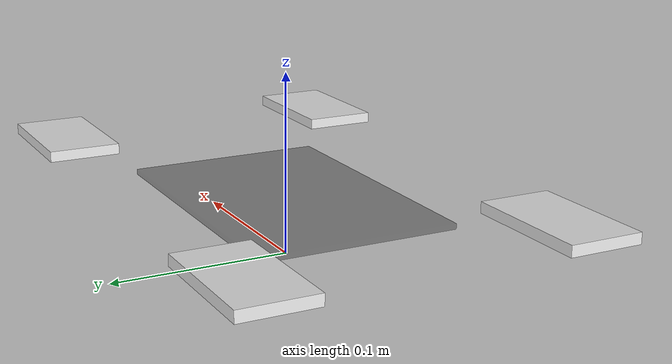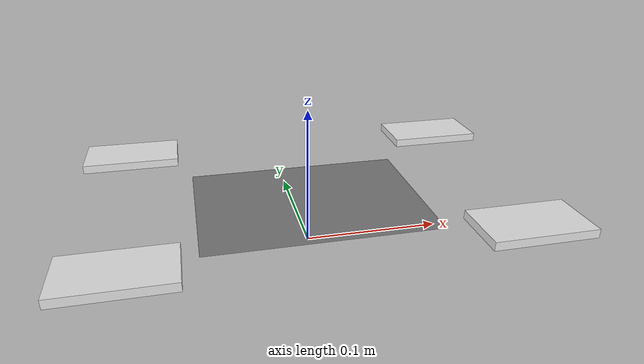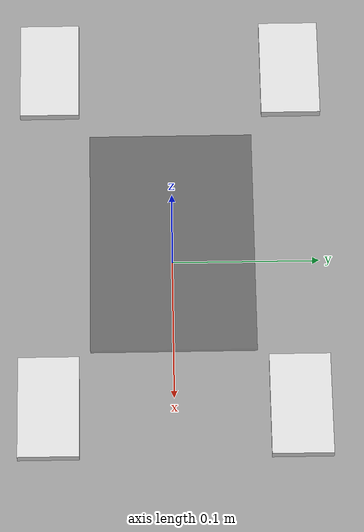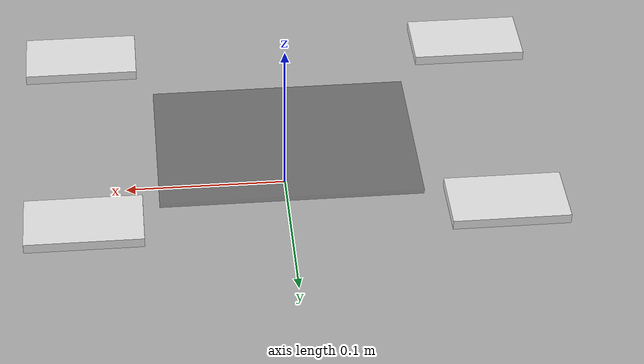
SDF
<?xml version="1.0"?>
<sdf version="1.9">
  <model name="room315_shuttle_identity_frame">
    <static>false</static>
    <link name="identity_frame_link">
      <kinematic>true</kinematic>
      <gravity>false</gravity>
      <!-- Center keep-out plate shows where payloads may sit; the four corner tabs are identity-safe zones. -->
      <visual name="payload_keepout_boundary_center">
        <pose>0 0 0.032 0 0 0</pose>
        <geometry><box><size>0.160 0.110 0.003</size></box></geometry>
        <material>
          <ambient>0.05 0.05 0.05 0.35</ambient>
          <diffuse>0.05 0.05 0.05 0.35</diffuse>
          <emissive>0.0 0.0 0.0 1</emissive>
        </material>
      </visual>
      <visual name="identity_safe_region_front_left">
        <pose>0.125 0.082 0.044 0 0 0</pose>
        <geometry><box><size>0.070 0.040 0.006</size></box></geometry>
        <material><ambient>0.9 0.9 0.9 1</ambient><diffuse>0.9 0.9 0.9 1</diffuse></material>
      </visual>
      <visual name="identity_safe_region_front_right">
        <pose>0.125 -0.082 0.044 0 0 0</pose>
        <geometry><box><size>0.070 0.040 0.006</size></box></geometry>
        <material><ambient>0.9 0.9 0.9 1</ambient><diffuse>0.9 0.9 0.9 1</diffuse></material>
      </visual>
      <visual name="identity_safe_region_rear_left">
        <pose>-0.125 0.082 0.044 0 0 0</pose>
        <geometry><box><size>0.070 0.040 0.006</size></box></geometry>
        <material><ambient>0.9 0.9 0.9 1</ambient><diffuse>0.9 0.9 0.9 1</diffuse></material>
      </visual>
      <visual name="identity_safe_region_rear_right">
        <pose>-0.125 -0.082 0.044 0 0 0</pose>
        <geometry><box><size>0.070 0.040 0.006</size></box></geometry>
        <material><ambient>0.9 0.9 0.9 1</ambient><diffuse>0.9 0.9 0.9 1</diffuse></material>
      </visual>
    </link>
  </model>
</sdf>
